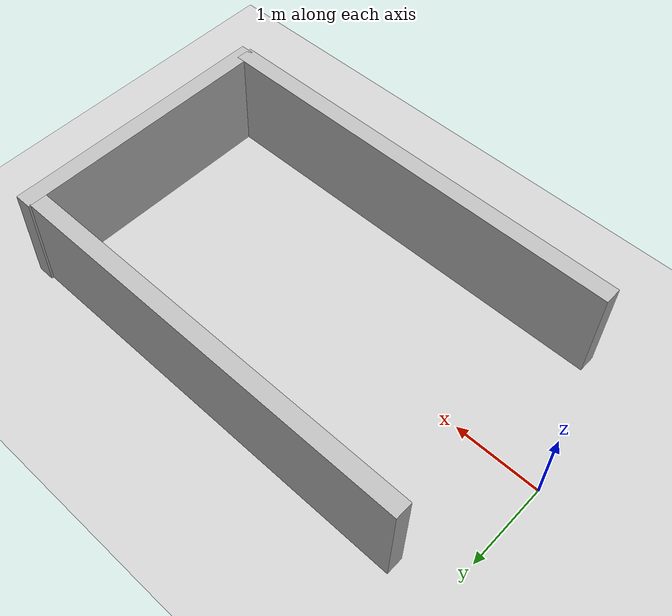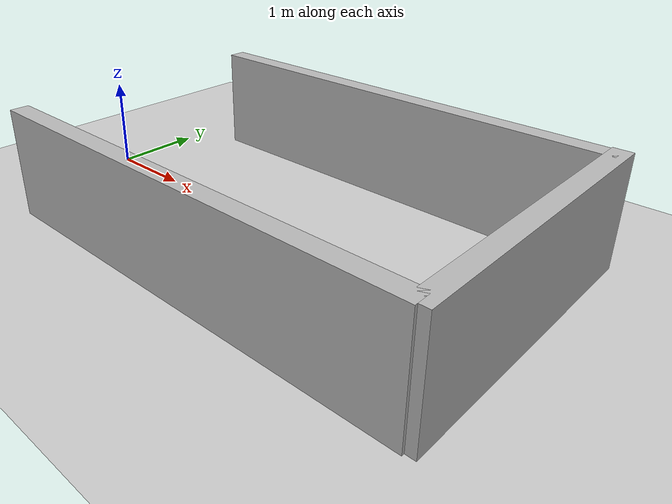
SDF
<?xml version="1.0"?>
<sdf version="1.6">
  <world name="v2-cal-maneuver-bay-s4305">
    <gravity>0 0 -9.81</gravity>
    <physics name="v2_deterministic" type="ode">
      <max_step_size>0.002</max_step_size>
      <real_time_update_rate>500</real_time_update_rate>
    </physics>
    <include>
      <uri>model://sun</uri>
    </include>
    <include>
      <uri>model://ground_plane</uri>
    </include>
    <model name="cal-bay-left">
      <static>true</static>
      <pose>3.007914421 1.504692989 0.600000000 0 0 -0.002665661</pose>
      <link name="link">
        <collision name="collision">
          <geometry>
            <box>
              <size>5.000000 0.200000 1.200000</size>
            </box>
          </geometry>
        </collision>
        <visual name="visual">
          <geometry>
            <box>
              <size>5.000000 0.200000 1.200000</size>
            </box>
          </geometry>
        </visual>
      </link>
    </model>
    <model name="cal-bay-right">
      <static>true</static>
      <pose>2.982337721 -1.509147216 0.600000000 0 0 0.001035118</pose>
      <link name="link">
        <collision name="collision">
          <geometry>
            <box>
              <size>5.000000 0.200000 1.200000</size>
            </box>
          </geometry>
        </collision>
        <visual name="visual">
          <geometry>
            <box>
              <size>5.000000 0.200000 1.200000</size>
            </box>
          </geometry>
        </visual>
      </link>
    </model>
    <model name="cal-bay-back">
      <static>true</static>
      <pose>5.485971564 0.021826920 0.600000000 0 0 -0.003642270</pose>
      <link name="link">
        <collision name="collision">
          <geometry>
            <box>
              <size>0.200000 3.200000 1.200000</size>
            </box>
          </geometry>
        </collision>
        <visual name="visual">
          <geometry>
            <box>
              <size>0.200000 3.200000 1.200000</size>
            </box>
          </geometry>
        </visual>
      </link>
    </model>
  </world>
</sdf>
